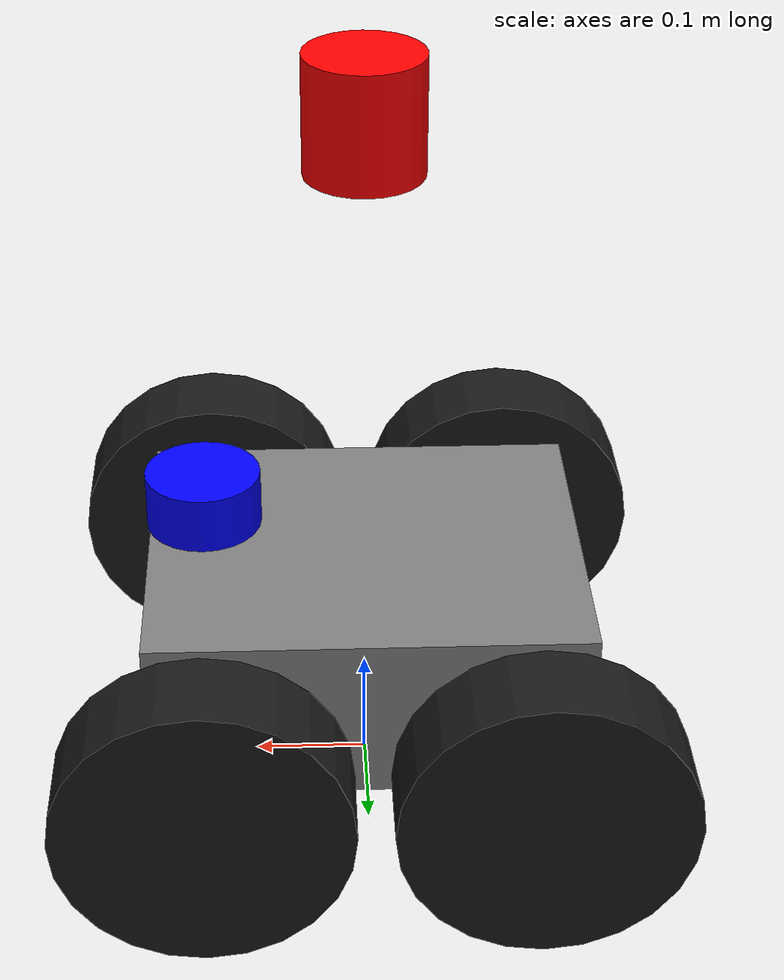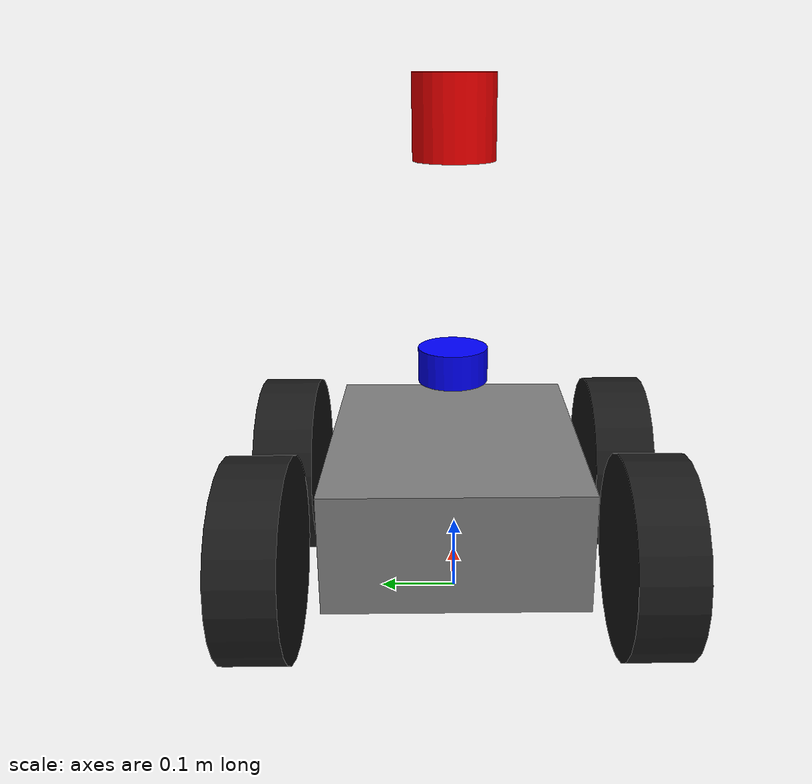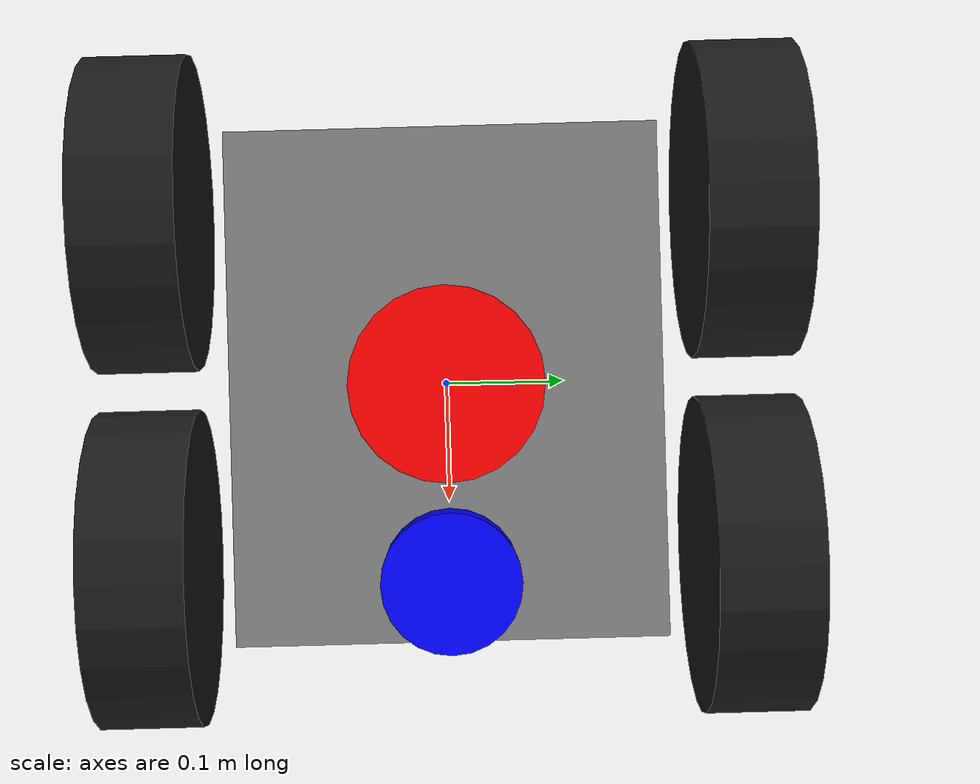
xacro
<?xml version="1.0"?>
<robot xmlns:xacro="http://ros.org/wiki/xacro"
  xmlns:controller="http://playerstage.sourceforge.net/gazebo/xmlschema/#controller"
  xmlns:interface="http://playerstage.sourceforge.net/gazebo/xmlschema/#interface"
  xmlns:sensor="http://playerstage.sourceforge.net/gazebo/xmlschema/#sensor" name="robot">

  <xacro:include filename="$(find terrain_nav_bringup)/urdf/common.urdf.xacro" />
  <xacro:include filename="$(find terrain_nav_bringup)/urdf/wheel.urdf.xacro" />

  <xacro:property name="M_PI" value="3.14159265359"/>

  <xacro:property name="imu_stdev" value="0.0001" />

  <xacro:property name="body_height" value="0.15"/>
  <xacro:property name="body_length" value="0.38"/>
  <xacro:property name="body_width" value="0.32"/>

  <xacro:property name="axis_front" value="0.14"/>
  <xacro:property name="axis_back" value="-0.14"/>

  <xacro:property name="wheel_thickness" value="0.08"/>
  <xacro:property name="wheel_body_offset" value="${wheel_thickness/2 + 0.035}"/>
  <xacro:property name="wheel_radius" value="0.125"/>
  <xacro:property name="axis_height" value="-0.03"/>
  <xacro:property name="axis_right" value="${-body_width/2 - wheel_body_offset}"/>
  <xacro:property name="axis_left" value="${body_width/2 + wheel_body_offset}"/>
  <xacro:property name="axis_length" value="${body_width + 2 * wheel_body_offset}" />
  <xacro:property name="turning_adaptation" value="2.95" />

  <xacro:property name="body_mass" value="25.0"/>
  <xacro:property name="wheel_mass" value="5.0"/>

  <xacro:property name="imu_width" value="0.036"/>
  <xacro:property name="imu_length" value="0.038"/>
  <xacro:property name="imu_height" value="0.012"/>

  <xacro:property name="imu_offset_x" value="0"/>
  <xacro:property name="imu_offset_y" value="0"/>
  <xacro:property name="imu_offset_z" value="${- body_height/2 + 0.005 + 0.007}"/>

  <xacro:property name="em_body_length" value="0.11"/>
  <xacro:property name="em_body_width" value="0.04"/>
  <xacro:property name="em_body_height" value="0.03"/>

  <xacro:property name="em_button_radius" value="0.0125"/>
  <xacro:property name="em_button_depth" value="0.02" />

  <link name="base_footprint"/>
  <link name="base_link">
    <visual>
      <origin xyz="0 0 0" rpy="0 0 0" />
      <geometry>
        <box size="${body_length} ${body_width} ${body_height}"/>
      </geometry>
      <material name="silver">
        <color rgba="0.5 0.5 0.5 1" />
      </material>
    </visual>
    <collision>
      <origin xyz="0 0 0" rpy="0 0 0" />
      <geometry>
        <box size="${body_length} ${body_width} ${body_height}"/>
      </geometry>
    </collision>
    <xacro:box_inertial x="${body_length}" y="${body_width}" z="${body_height}" mass="${body_mass}"/>
  </link>

  <joint name="base_footprint_to_base_joint" type="fixed">
    <origin xyz="0 0 ${wheel_radius - axis_height}" rpy="0 0 0" />
    <parent link="base_footprint"/>
    <child link="base_link" />
  </joint>

  <xacro:wheel name="left_front_wheel" parent="base_link">
    <origin xyz="${axis_front} ${axis_left} ${axis_height}" rpy="0 0 0"/>
  </xacro:wheel>

  <xacro:wheel name="left_rear_wheel" parent="base_link">
    <origin xyz="${axis_back} ${axis_left} ${axis_height}" rpy="0 0 0" />
  </xacro:wheel>

  <xacro:wheel name="right_front_wheel" parent="base_link">
    <origin xyz="${axis_front} ${axis_right} ${axis_height}" rpy="0 0 0"/>
  </xacro:wheel>

  <xacro:wheel name="right_rear_wheel" parent="base_link">
    <origin xyz="${axis_back} ${axis_right} ${axis_height}" rpy="0 0 0" />
  </xacro:wheel>

  <link name="imu">
    <visual>
      <origin xyz="0 0 0" rpy="0 0 0" />
      <geometry>
        <box size="${imu_length} ${imu_width} ${imu_height}"/>
      </geometry>
      <material name="white">
        <color rgba="0.8 0.8 0.8 1" />
      </material>
    </visual>
  </link>

  <joint name="imu_to_base_joint" type="fixed">
    <parent link="base_link" />
    <child link="imu" />
    <origin xyz="${imu_offset_x} ${imu_offset_y} ${imu_offset_z}" rpy="${M_PI} 0 ${M_PI/2.0}" />
  </joint>

  <link name="laser2d">
    <visual>
      <origin xyz="0 0 0" rpy="0 0 0" />
      <geometry>
        <cylinder radius="0.05" length="0.05"/>
      </geometry>
      <material name="blue">
        <color rgba="0 0 1 1" />
      </material>
    </visual>
    <collision>
      <geometry>
        <cylinder radius="0.05" length="0.05"/>
      </geometry>
    </collision>
    <xacro:cylinder_inertial radius="0.05" length="0.05" mass="0.05" />
  </link>

  <joint name="laser2d_to_base_joint" type="fixed">
    <parent link="base_link" />
    <child link="laser2d" />
    <origin xyz="${body_length/2 - 0.05} 0 ${body_height/2 + 0.05}"/>
  </joint>

  <link name="laser3d">
    <visual>
      <origin xyz="0 0 0" rpy="0 0 0" />
      <geometry>
        <cylinder radius="0.05" length="0.1"/>
      </geometry>
      <material name="red">
        <color rgba="1 0 0 1" />
      </material>
    </visual>
    <collision>
      <geometry>
        <cylinder radius="0.05" length="0.1"/>
      </geometry>
    </collision>
    <xacro:cylinder_inertial radius="0.05" length="0.1" mass="0.1" />
  </link>

  <joint name="laser3d_to_base_joint" type="fixed">
    <parent link="base_link" />
    <child link="laser3d" />
    <origin xyz="0 0 ${body_height/2 + 0.4}"/>
  </joint>

  <!-- Gazebo Plugins -->

  <gazebo reference="imu">
    <sensor name="imu" type="imu">
      <always_on>1</always_on>
      <update_rate>100</update_rate>
      <visualize>false</visualize>
      <topic>/model/my_bot/imu</topic>
      <frame_id>imu</frame_id>
      <gz_frame_id>imu</gz_frame_id>
      <ign_frame_id>imu</ign_frame_id>
    </sensor>
  </gazebo>

  <gazebo reference="laser2d">
    <sensor name="laser2d" type="gpu_lidar">
      <pose relative_to='laser2d'>0 0 0 0 0 0</pose>
      <topic>/model/my_bot/scan</topic>
      <update_rate>10</update_rate>
      <ray>
        <scan>
          <horizontal>
            <samples>270</samples>
            <resolution>1</resolution>
            <min_angle>-2.356194</min_angle>
            <max_angle> 2.356194</max_angle>
          </horizontal>
          <vertical>
            <samples>1</samples>
            <resolution>0.01</resolution>
            <min_angle>0</min_angle>
            <max_angle>0</max_angle>
          </vertical>
        </scan>
        <range>
          <min>0.08</min>
          <max>15.0</max>
          <resolution>0.01</resolution>
        </range>
      </ray>
      <always_on>1</always_on>
      <visualize>true</visualize>
      <frame_id>laser2d</frame_id>
      <gz_frame_id>laser2d</gz_frame_id>
      <ign_frame_id>laser2d</ign_frame_id>
    </sensor>
  </gazebo>
  <gazebo reference="laser3d">
    <sensor name="laser3d" type="gpu_lidar">
      <pose relative_to='laser3d'>0 0 0 0 0 0</pose>
      <topic>/model/my_bot/points</topic>
      <update_rate>10</update_rate>
      <ray>
        <scan>
          <horizontal>
            <samples>128</samples>
            <resolution>1</resolution>
            <min_angle>${-M_PI}</min_angle>
            <max_angle>${M_PI}</max_angle>
          </horizontal>
          <vertical>
            <samples>32</samples>
            <resolution>1</resolution>
            <min_angle>${-32.0 * M_PI / 180.0}</min_angle>
            <max_angle>${32.0 * M_PI / 180.0}</max_angle>
          </vertical>
        </scan>
        <range>
          <min>0.2</min>
          <max>100.0</max>
          <resolution>0.01</resolution>
        </range>
      </ray>
      <always_on>1</always_on>
      <visualize>true</visualize>
      <frame_id>laser3d</frame_id>
      <gz_frame_id>laser3d</gz_frame_id>
      <ign_frame_id>laser3d</ign_frame_id>
    </sensor>
  </gazebo>

  <gazebo>
    <plugin filename="libignition-gazebo-diff-drive-system.so" name="ignition::gazebo::systems::DiffDrive">

      <num_wheel_pairs>2</num_wheel_pairs>
      <!-- wheels0 -->
      <left_joint>left_front_wheel</left_joint>
      <right_joint>right_front_wheel</right_joint>
      <wheel_separation>${axis_length}</wheel_separation>
      <wheel_radius>${wheel_radius}</wheel_radius>

      <!-- wheels1-->
      <left_joint>left_rear_wheel</left_joint>
      <right_joint>right_rear_wheel</right_joint>
      <wheel_separation>${axis_length}</wheel_separation>
      <wheel_radius>${wheel_radius}</wheel_radius>

      <odom_publish_frequency>50</odom_publish_frequency>
      <frame_id>odom</frame_id>
      <child_frame_id>base_footprint</child_frame_id>
      <topic>/model/my_bot/cmd_vel</topic>
    </plugin>
  </gazebo>

  <gazebo>
    <plugin filename="libignition-gazebo-joint-state-publisher-system.so" name="ignition::gazebo::systems::JointStatePublisher">
      <joint_name>right_front_wheel</joint_name>
      <joint_name>left_front_wheel</joint_name>
      <joint_name>right_rear_wheel</joint_name>
      <joint_name>left_rear_wheel</joint_name>
      <topic>/model/my_bot/joint_states</topic>
      <update_rate>50</update_rate>
    </plugin>

  </gazebo>

  <gazebo>
    <plugin filename="libignition-gazebo6-pose-publisher-system.so" name="ignition::gazebo::systems::PosePublisher">
      <publish_link_pose>true</publish_link_pose>
      <publish_nested_model_pose>true</publish_nested_model_pose>
      <use_pose_vector_msg>true</use_pose_vector_msg>
      <static_publisher>true</static_publisher>
      <static_update_rate>50</static_update_rate>
    </plugin>
  </gazebo>

</robot>

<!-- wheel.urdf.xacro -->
<robot xmlns:xacro="http://ros.org/wiki/xacro" name="wheel">
    <xacro:macro name="wheel" params="name parent *joint_pose">
        <link name="${name}_link">

            <visual>
                <origin xyz="0 0 0" rpy="${M_PI/2} 0 0" />
                <geometry>
                    <cylinder length="${wheel_thickness}" radius="${wheel_radius}"/>
                </geometry>
                <material name="wheelcolor" >
                    <color rgba="0.1 0.1 0.1 1" />
                </material>
            </visual>

            <collision>
                <origin xyz="0 0 0" rpy="${M_PI/2} 0 0" />
                <geometry>
                    <cylinder length="${wheel_thickness}" radius="${wheel_radius}"/>
                </geometry>
            </collision>

            <xacro:cylinder_inertial_with_origin radius="${wheel_radius}" length="${wheel_thickness}" mass="${wheel_mass}">
                <origin xyz="0 0 0" rpy="${M_PI/2} 0 0"/>
            </xacro:cylinder_inertial_with_origin>
        </link>

        <gazebo reference="${name}_link">
            <mu1 value="1.0"/>
            <mu2 value="1.0"/>
            <fdir1 value="1 0 0"/>
            <material>Gazebo/DarkGrey</material>
        </gazebo>

        <joint name="${name}" type="continuous">
            <parent link="${parent}"/>
            <child link="${name}_link"/>
            <xacro:insert_block name="joint_pose"/>
            <axis xyz="0 1 0" rpy="0 0 0" />
        </joint>

    </xacro:macro>
</robot>
